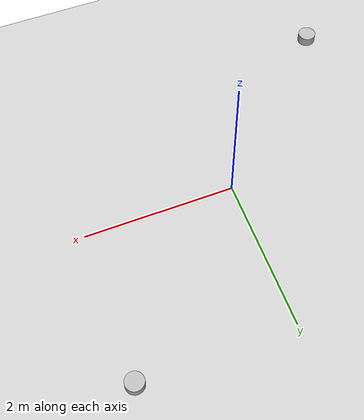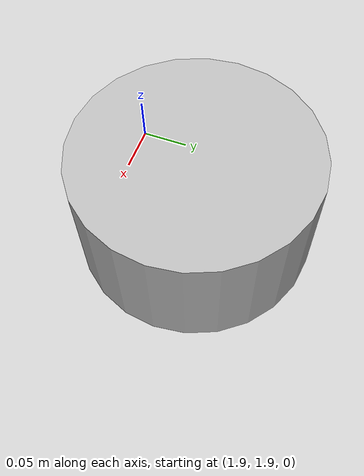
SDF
<sdf version='1.4'>
  <world name='default'>
    <!-- A global light source -->
    <include>
      <uri>model://sun</uri>
    </include>

    <!-- A ground plane -->
    <include>
      <uri>model://ground_plane</uri>
    </include>

    <physics type="ode">
      <real_time_update_rate>1000.0</real_time_update_rate>
      <max_step_size>0.001</max_step_size>
      <real_time_factor>1</real_time_factor>
      <ode>
        <solver>
          <type>quick</type>
          <iters>150</iters>
          <precon_iters>0</precon_iters>
          <sor>1.400000</sor>
          <use_dynamic_moi_rescaling>1</use_dynamic_moi_rescaling>
        </solver>
        <constraints>
          <cfm>0.00001</cfm>
          <erp>0.2</erp>
          <contact_max_correcting_vel>2000.000000</contact_max_correcting_vel>
          <contact_surface_layer>0.01000</contact_surface_layer>
        </constraints>
      </ode>
    </physics>

    <!-- Load model -->

    <model name="pedestrian_1">
      <pose>2 2 0 0 0 0</pose>
      <link name="link">
        <collision name="collision">
          <geometry>
            <cylinder>
              <radius>0.12</radius>
              <length>0.25</length>
            </cylinder>
          </geometry>
        </collision>

        <visual name="visual">
          <geometry>
            <cylinder>
              <radius>0.12</radius>
              <length>0.25</length>
            </cylinder>
          </geometry>
        </visual>
      </link>
    </model>

    <model name="pedestrian_2">
      <pose>-2 -2 0 0 0 0</pose>
      <link name="link">
        <collision name="collision">
          <geometry>
            <cylinder>
              <radius>0.12</radius>
              <length>0.25</length>
            </cylinder>
          </geometry>
        </collision>

        <visual name="visual">
          <geometry>
            <cylinder>
              <radius>0.12</radius>
              <length>0.25</length>
            </cylinder>
          </geometry>
        </visual>
      </link>
      <plugin name="obstacle_2" filename="libobstacle_2.so"/>
    </model>

    <scene>
      <ambient>0.4 0.4 0.4 1</ambient>
      <background>0.7 0.7 0.7 1</background>
      <shadows>0</shadows>
    </scene>

    <gui fullscreen='0'>
      <camera name='user_camera'>
        <pose>0.0 0.0 17.0 0 1.5708 0</pose>
        <view_controller>orbit</view_controller>
      </camera>
    </gui>

  </world>
</sdf>
